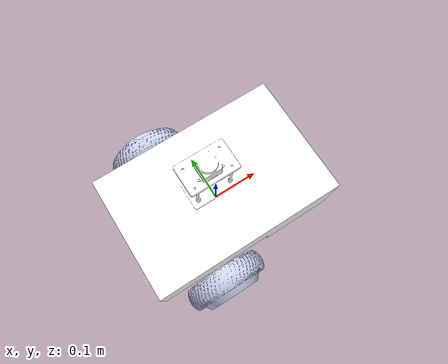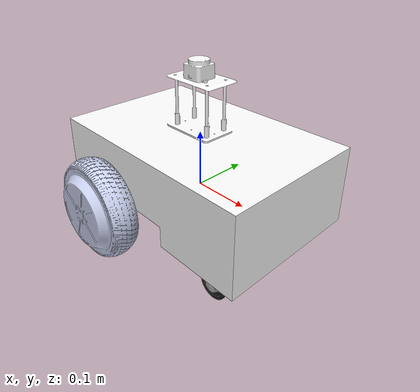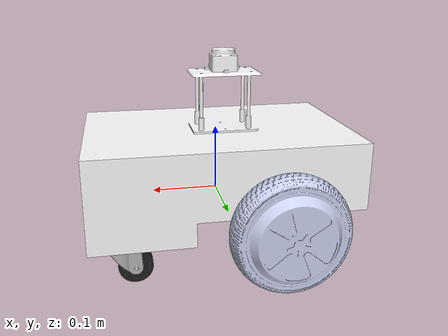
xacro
<?xml version="1.0" encoding="utf-8"?>

<robot  name="waiter_robot_1" xmlns:xacro="http://ros.org/wiki/xacro">
  <xacro:include filename="$(find waiter_robot_1)/urdf/waiter_common_properties.xacro"/>
  <xacro:include filename="$(find waiter_robot_1)/urdf/waiter_robot_1.gazebo.xacro"/>

  <link name="base_footprint"/>

  <joint name="base_joint" type="fixed">
    <parent link="base_footprint"/>
    <child link="base_link"/>
    <origin xyz="0.0 0.0 0.0" rpy="0 0 0"/>
  </joint>

  <link name="base_link">
    <inertial>
      <origin
        xyz="0.014375 0.00017948 0.041436"
        rpy="0 0 0" />
      <mass
        value="5.3045" />
      <inertia
        ixx="0.02574"
        ixy="-4.8944E-08"
        ixz="-1.5815E-08"
        iyy="0.051134"
        iyz="-5.7053E-08"
        izz="0.070862" />
    </inertial>
    <visual>
      <origin
        xyz="0 0 0"
        rpy="0 0 0" />
      <geometry>
        <mesh
          filename="package://waiter_robot_1/meshes/base_link.STL" />
      </geometry>
      <material
        name="">
        <color
          rgba="1 1 1 1" />
      </material>
    </visual>
    <collision>
      <origin
        xyz="0 0 0"
        rpy="0 0 0" />
      <geometry>
        <mesh
          filename="package://waiter_robot_1/meshes/base_link.STL" />
      </geometry>
    </collision>
  </link>

  <joint name="wheel_left_joint" type="continuous">
    <origin
      xyz="-0.075 0.1942 -0.0125"
      rpy="-1.5708 0 0" />
    <parent
      link="base_link" />
    <child
      link="wheel_left_link" />
    <axis
      xyz="0 0 1" />
  </joint>

  <link name="wheel_left_link">
    <inertial>
      <origin
        xyz="1.8976E-08 1.8319E-09 -0.033574"
        rpy="0 0 0" />
      <mass
        value="2.65022" />
      <inertia
        ixx="0.0015508"
        ixy="4.122E-10"
        ixz="-1.5313E-10"
        iyy="0.0015508"
        iyz="-2.3998E-11"
        izz="0.0029007" />
    </inertial>
    <visual>
      <origin
        xyz="0 0 0"
        rpy="0 0 0" />
      <geometry>
        <mesh
          filename="package://waiter_robot_1/meshes/wheel_L_link.STL" />
      </geometry>
      <material
        name="">
        <color
          rgba="0.79216 0.81961 0.93333 1" />
      </material>
    </visual>
    <collision>
      <origin
        xyz="0 0 0"
        rpy="0 0 0" />
      <geometry>
        <mesh
          filename="package://waiter_robot_1/meshes/wheel_L_link.STL" />
      </geometry>
    </collision>
  </link>

  <joint name="wheel_right_joint" type="continuous">
    <origin
      xyz="-0.075 -0.1942 -0.0125"
      rpy="1.5708 0 3.1416" />
    <parent
      link="base_link" />
    <child
      link="wheel_right_link" />
    <axis
      xyz="0 0 1" />
  </joint>

  <link name="wheel_right_link">
    <inertial>
      <origin
        xyz="1.8976E-08 -1.8319E-09 0.033574"
        rpy="0 0 0" />
      <mass
        value="2.65022" />
      <inertia
        ixx="0.0015508"
        ixy="-4.122E-10"
        ixz="1.5313E-10"
        iyy="0.0015508"
        iyz="-2.3998E-11"
        izz="0.0029007" />
    </inertial>
    <visual>
      <origin
        xyz="0 0 0"
        rpy="0 0 0" />
      <geometry>
        <mesh
          filename="package://waiter_robot_1/meshes/wheel_R_link.STL" />
      </geometry>
      <material
        name="">
        <color
          rgba="0.79216 0.81961 0.93333 1" />
      </material>
    </visual>
    <collision>
      <origin
        xyz="0 0 0"
        rpy="0 0 0" />
      <geometry>
        <mesh
          filename="package://waiter_robot_1/meshes/wheel_R_link.STL" />
      </geometry>
    </collision>
  </link>

  <joint name="castor_base_L_joint" type="continuous">
    <origin
      xyz="0.15472 0.0925 -0.0461"
      rpy="3.1416 0 0" />
    <parent
      link="base_link" />
    <child
      link="castor_base_L_link" />
    <axis
      xyz="0 0 1" />
  </joint>

  <link name="castor_base_L_link">
    <inertial>
      <origin
        xyz="-0.0098504 0.00015509 0.010437"
        rpy="0 0 0" />
      <mass
        value="0.5" />
      <inertia
        ixx="0.0001"
        ixy="0.0"
        ixz="0.0"
        iyy="0.0001"
        iyz="0.0"
        izz="0.0001" />
    </inertial>
    <visual>
      <origin
        xyz="0 0 0"
        rpy="0 0 0" />
      <geometry>
        <mesh
          filename="package://waiter_robot_1/meshes/castor_base_L_link.STL" />
      </geometry>
      <material
        name="">
        <color
          rgba="0.7 0.7 0.7 1" />
      </material>
    </visual>
    <collision>
      <origin
        xyz="0 0 0"
        rpy="0 0 0" />
      <geometry>
        <mesh
          filename="package://waiter_robot_1/meshes/castor_base_L_link.STL" />
      </geometry>
    </collision>
  </link>

  <joint name="castor_wheel_L_joint" type="continuous">
    <origin
      xyz="-0.019934 0 0.027"
      rpy="-1.5708 0 -3.1416" />
    <parent
      link="castor_base_L_link" />
    <child
      link="castor_wheel_L_link" />
    <axis
      xyz="0 0 1" />
  </joint>

  <link name="castor_wheel_L_link">
    <inertial>
      <origin
        xyz="1.1102E-16 6.9389E-17 -2.7409E-16"
        rpy="0 0 0" />
      <mass value="0.005" />
        <inertia
          ixx="0.001"
          ixy="0.0"
          ixz="0.0"
          iyy="0.001"
          iyz="0.0"
          izz="0.001" />
    </inertial>
    <visual>
      <origin
        xyz="0 0 0"
        rpy="0 0 0" />
      <geometry>
        <mesh
          filename="package://waiter_robot_1/meshes/castor_wheel_L_link.STL" />
      </geometry>
      <material
        name="">
        <color
          rgba="0.1098 0.1098 0.1098 1" />
      </material>
    </visual>
    <collision>
      <origin
        xyz="0 0 0"
        rpy="0 0 0" />
      <geometry>
        <mesh
          filename="package://waiter_robot_1/meshes/castor_wheel_L_link.STL" />
      </geometry>
    </collision>
  </link>

  <joint name="castor_base_R_joint" type="continuous">
    <origin
      xyz="0.15472 -0.0915 -0.0461"
      rpy="3.1416 0 0" />
    <parent
      link="base_link" />
    <child
      link="castor_base_R_link" />
    <axis
      xyz="0 0 1" />
  </joint>

  <link name="castor_base_R_link">
    <inertial>
      <origin
        xyz="0.014375 0.00017948 0.041436"
        rpy="0 0 0" />
      <mass value="0.005" />
        <inertia
          ixx="0.001"
          ixy="0.0"
          ixz="0.0"
          iyy="0.001"
          iyz="0.0"
          izz="0.001" />
    </inertial>
    <visual>
      <origin
        xyz="0 0 0"
        rpy="0 0 0" />
      <geometry>
        <mesh
          filename="package://waiter_robot_1/meshes/castor_base_R_link.STL" />
      </geometry>
      <material
        name="">
        <color
          rgba="0.7 0.7 0.7 1" />
      </material>
    </visual>
    <collision>
      <origin
        xyz="0 0 0"
        rpy="0 0 0" />
      <geometry>
        <mesh
          filename="package://waiter_robot_1/meshes/castor_base_R_link.STL" />
      </geometry>
    </collision>
  </link>

  <joint name="castor_wheel_R_joint" type="continuous">
    <origin
      xyz="-0.019934 0 0.027"
      rpy="-1.5708 0 -3.1416" />
    <parent
      link="castor_base_R_link" />
    <child
      link="castor_wheel_R_link" />
    <axis
      xyz="0 0 1" />
  </joint>

  <link name="castor_wheel_R_link">
    <inertial>
      <origin
        xyz="1.1102E-16 7.4593E-17 -3.0531E-16"
        rpy="0 0 0" />
      <mass
        value="0.2" />
      <inertia
        ixx="0.0001"
        ixy="0.0"
        ixz="0.0"
        iyy="0.0001"
        iyz="0.0"
        izz="0.0001" />
    </inertial>
    <visual>
      <origin
        xyz="0 0 0"
        rpy="0 0 0" />
      <geometry>
        <mesh
          filename="package://waiter_robot_1/meshes/castor_wheel_R_link.STL" />
      </geometry>
      <material
        name="">
        <color
          rgba="0.1098 0.1098 0.1098 1" />
      </material>
    </visual>
    <collision>
      <origin
        xyz="0 0 0"
        rpy="0 0 0" />
      <geometry>
        <mesh
          filename="package://waiter_robot_1/meshes/castor_wheel_R_link.STL" />
      </geometry>
    </collision>
  </link>

  <joint name="imu_joint" type="fixed">
    <parent link="base_link"/>
    <child link="imu_link"/>

    <origin xyz="-0.075 0 -0.0125" rpy="0 0 0"/>
  </joint>

  <link name="imu_link"/>

  <joint name="scan_joint" type="fixed">
    <parent link="base_link"/>
    <child link="base_scan"/>
    <origin xyz="-0.01 0.006 0.225" rpy="0 0 0"/>
  </joint>

  <link name="base_scan"/>

  <joint name="camera_joint" type="fixed">
    <parent link="base_link"/>
    <child link="camera_link"/>
    <origin xyz="0.16 0.005 0.165" rpy="0 0 0"/>
  </joint>

  <link name="camera_link"/>

</robot>
